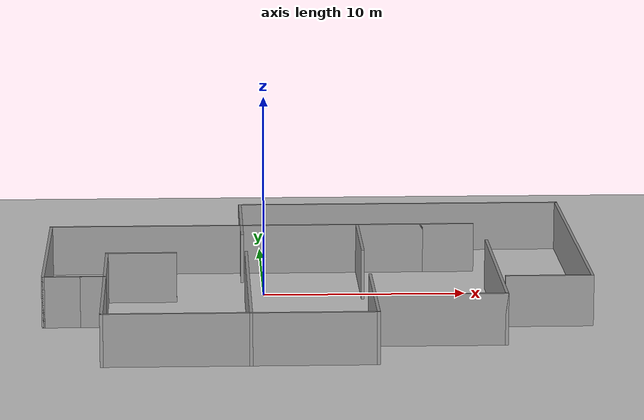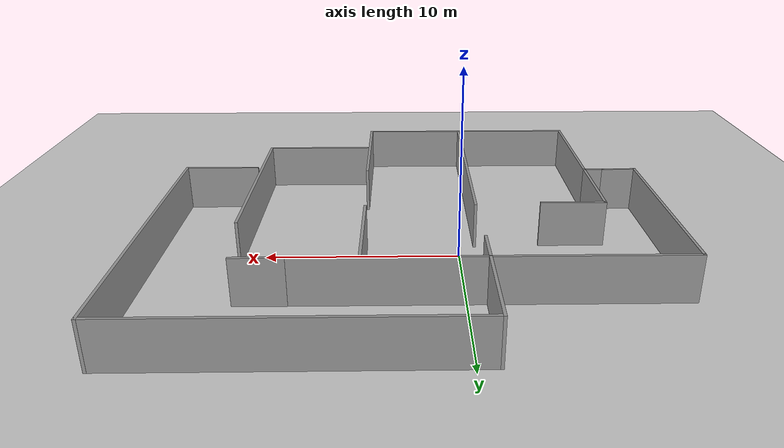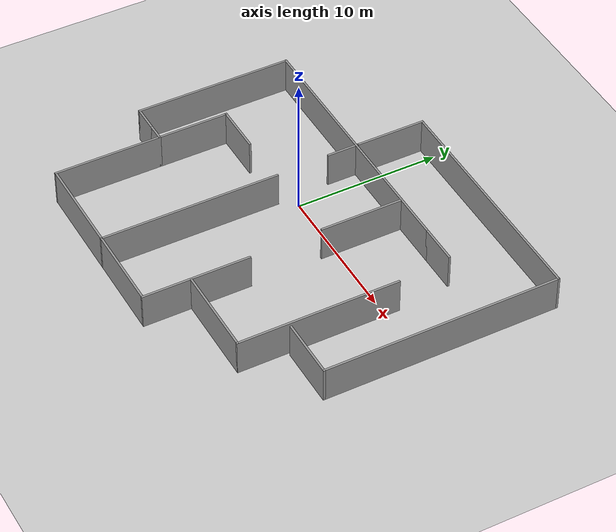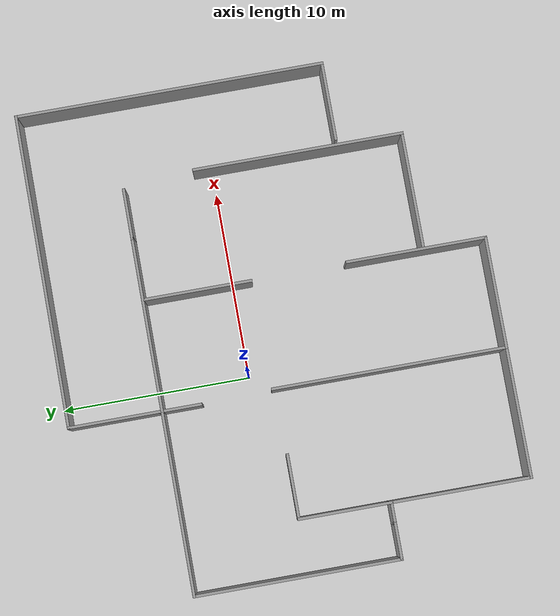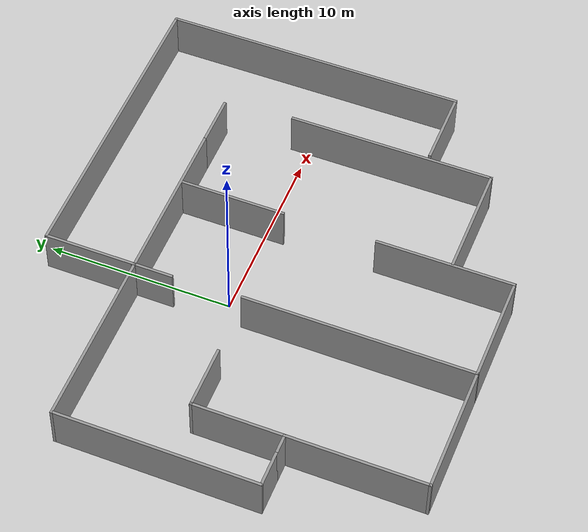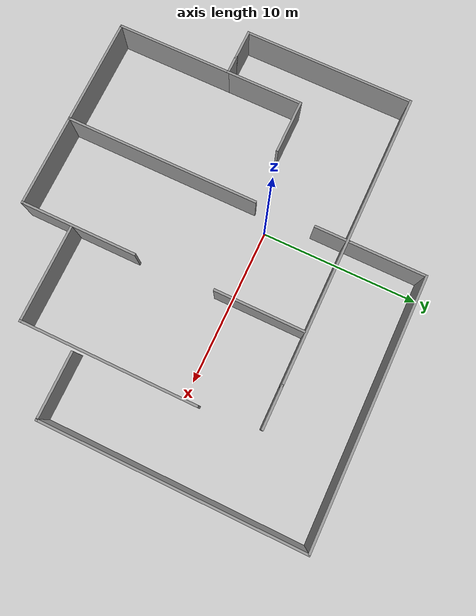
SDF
<sdf version="1.6">
 <world name="default">
  <light name="sun" type="directional">
   <pose>0 0 10 0 -0 0</pose>
   <diffuse>0.8 0.8 0.8 1</diffuse>
   <specular>0.2 0.2 0.2 1</specular>
   <attenuation>
    <range>1000</range>
    <constant>0.9</constant>
    <linear>0.01</linear>
    <quadratic>0.001</quadratic>
   </attenuation>
   <direction>-0.5 0.1 -0.9</direction>
  </light>
  <model name="ground_plane">
   <static>1</static>
   <link name="link">
    <collision name="collision">
     <geometry><plane><normal>0 0 1</normal><size>100 100</size></plane></geometry>
     <surface>
      <contact><collide_bitmask>65535</collide_bitmask></contact>
      <friction><ode><mu>100</mu><mu2>50</mu2></ode></friction>
     </surface>
    </collision>
    <visual name="visual">
     <cast_shadows>0</cast_shadows>
     <geometry><plane><normal>0 0 1</normal><size>100 100</size></plane></geometry>
     <material>
      <script><uri>file://media/materials/scripts/gazebo.material</uri><name>Gazebo/Grey</name></script>
     </material>
    </visual>
   </link>
  </model>
  <gravity>0 0 -9.8</gravity>
  <magnetic_field>6e-06 2.3e-05 -4.2e-05</magnetic_field>
  <atmosphere type="adiabatic"/>
  <physics name="default_physics" default="0" type="ode">
   <max_step_size>0.001</max_step_size>
   <real_time_factor>1</real_time_factor>
   <real_time_update_rate>1000</real_time_update_rate>
  </physics>
  <scene><ambient>0.4 0.4 0.4 1</ambient><background>0.7 0.7 0.7 1</background><shadows>1</shadows></scene>
  <audio><device>default</device></audio>
  <spherical_coordinates>
   <surface_model>EARTH_WGS84</surface_model>
   <latitude_deg>0</latitude_deg>
   <longitude_deg>0</longitude_deg>
   <elevation>0</elevation>
   <heading_deg>0</heading_deg>
  </spherical_coordinates>
  <model name="dalaohouse">
   <pose>2.43948 -1.90045 0 0 -0 0</pose>
   <link name="Wall_10">
    <collision name="Wall_10_Collision">
     <geometry><box><size>3.5 0.15 2.5</size></box></geometry>
     <pose>0 0 1.25 0 -0 0</pose>
    </collision>
    <visual name="Wall_10_Visual">
     <pose>0 0 1.25 0 -0 0</pose>
     <geometry><box><size>3.5 0.15 2.5</size></box></geometry>
     <material>
      <script><uri>file://media/materials/scripts/gazebo.material</uri><name>Gazebo/Grey</name></script>
      <ambient>1 1 1 1</ambient>
     </material>
     <meta><layer>0</layer></meta>
    </visual>
    <pose>-8.51135 0.640175 0 0 -0 0</pose>
   </link>
   <link name="Wall_12">
    <collision name="Wall_12_Collision">
     <geometry><box><size>7.5 0.15 2.5</size></box></geometry>
     <pose>0 0 1.25 0 -0 0</pose>
    </collision>
    <visual name="Wall_12_Visual">
     <pose>0 0 1.25 0 -0 0</pose>
     <geometry><box><size>7.5 0.15 2.5</size></box></geometry>
     <material>
      <script><uri>file://media/materials/scripts/gazebo.material</uri><name>Gazebo/Grey</name></script>
      <ambient>1 1 1 1</ambient>
     </material>
     <meta><layer>0</layer></meta>
    </visual>
    <pose>-10.1863 -7.88483 0 0 -0 -1.5708</pose>
   </link>
   <link name="Wall_13">
    <collision name="Wall_13_Collision">
     <geometry><box><size>7 0.15 2.5</size></box></geometry>
     <pose>0 0 1.25 0 -0 0</pose>
    </collision>
    <visual name="Wall_13_Visual">
     <pose>0 0 1.25 0 -0 0</pose>
     <geometry><box><size>7 0.15 2.5</size></box></geometry>
     <material>
      <script><uri>file://media/materials/scripts/gazebo.material</uri><name>Gazebo/Grey</name></script>
      <ambient>1 1 1 1</ambient>
     </material>
     <meta><layer>0</layer></meta>
    </visual>
    <pose>-6.76135 -11.5598 0 0 -0 0</pose>
   </link>
   <link name="Wall_14">
    <collision name="Wall_14_Collision">
     <geometry><box><size>12.5 0.15 2.5</size></box></geometry>
     <pose>0 0 1.25 0 -0 0</pose>
    </collision>
    <visual name="Wall_14_Visual">
     <pose>0 0 1.25 0 -0 0</pose>
     <geometry><box><size>12.5 0.15 2.5</size></box></geometry>
     <material>
      <script><uri>file://media/materials/scripts/gazebo.material</uri><name>Gazebo/Grey</name></script>
      <ambient>1 1 1 1</ambient>
     </material>
     <meta><layer>0</layer></meta>
    </visual>
    <pose>-3.33635 -5.38483 0 0 -0 1.5708</pose>
   </link>
   <link name="Wall_16">
    <collision name="Wall_16_Collision">
     <geometry><box><size>2.25 0.15 2.5</size></box></geometry>
     <pose>0 0 1.25 0 -0 0</pose>
    </collision>
    <visual name="Wall_16_Visual">
     <pose>0 0 1.25 0 -0 0</pose>
     <geometry><box><size>2.25 0.15 2.5</size></box></geometry>
     <material>
      <script><uri>file://media/materials/scripts/gazebo.material</uri><name>Gazebo/Grey</name></script>
      <ambient>1 1 1 1</ambient>
     </material>
     <meta><layer>0</layer></meta>
    </visual>
    <pose>-3.46365 5.65982 0 0 -0 -1.5708</pose>
   </link>
   <link name="Wall_18">
    <collision name="Wall_18_Collision">
     <geometry><box><size>6 0.15 2.5</size></box></geometry>
     <pose>0 0 1.25 0 -0 0</pose>
    </collision>
    <visual name="Wall_18_Visual">
     <pose>0 0 1.25 0 -0 0</pose>
     <geometry><box><size>6 0.15 2.5</size></box></geometry>
     <material>
      <script><uri>file://media/materials/scripts/gazebo.material</uri><name>Gazebo/Grey</name></script>
      <ambient>1 1 1 1</ambient>
     </material>
     <meta><layer>0</layer></meta>
    </visual>
    <pose>-0.411346 -11.5598 0 0 -0 0</pose>
   </link>
   <link name="Wall_19">
    <collision name="Wall_19_Collision">
     <geometry><box><size>7.5 0.15 2.5</size></box></geometry>
     <pose>0 0 1.25 0 -0 0</pose>
    </collision>
    <visual name="Wall_19_Visual">
     <pose>0 0 1.25 0 -0 0</pose>
     <geometry><box><size>7.5 0.15 2.5</size></box></geometry>
     <material>
      <script><uri>file://media/materials/scripts/gazebo.material</uri><name>Gazebo/Grey</name></script>
      <ambient>1 1 1 1</ambient>
     </material>
     <meta><layer>0</layer></meta>
    </visual>
    <pose>2.51365 -7.88483 0 0 -0 1.5708</pose>
   </link>
   <link name="Wall_21">
    <collision name="Wall_21_Collision">
     <geometry><box><size>5.75 0.15 2.5</size></box></geometry>
     <pose>0 0 1.25 0 -0 0</pose>
    </collision>
    <visual name="Wall_21_Visual">
     <pose>0 0 1.25 0 -0 0</pose>
     <geometry><box><size>5.75 0.15 2.5</size></box></geometry>
     <material>
      <script><uri>file://media/materials/scripts/gazebo.material</uri><name>Gazebo/Grey</name></script>
      <ambient>1 1 1 1</ambient>
     </material>
     <meta><layer>0</layer></meta>
    </visual>
    <pose>2.43165 3.72267 0 0 -0 -1.5708</pose>
   </link>
   <link name="Wall_23">
    <collision name="Wall_23_Collision">
     <geometry><box><size>6.25 0.15 2.5</size></box></geometry>
     <pose>0 0 1.25 0 -0 0</pose>
    </collision>
    <visual name="Wall_23_Visual">
     <pose>0 0 1.25 0 -0 0</pose>
     <geometry><box><size>6.25 0.15 2.5</size></box></geometry>
     <material>
      <script><uri>file://media/materials/scripts/gazebo.material</uri><name>Gazebo/Grey</name></script>
      <ambient>1 1 1 1</ambient>
     </material>
     <meta><layer>0</layer></meta>
    </visual>
    <pose>5.6688 -8.26237 0 0 -0 0</pose>
   </link>
   <link name="Wall_24">
    <collision name="Wall_24_Collision">
     <geometry><box><size>11.25 0.15 2.5</size></box></geometry>
     <pose>0 0 1.25 0 -0 0</pose>
    </collision>
    <visual name="Wall_24_Visual">
     <pose>0 0 1.25 0 -0 0</pose>
     <geometry><box><size>11.25 0.15 2.5</size></box></geometry>
     <material>
      <script><uri>file://media/materials/scripts/gazebo.material</uri><name>Gazebo/Grey</name></script>
      <ambient>1 1 1 1</ambient>
     </material>
     <meta><layer>0</layer></meta>
    </visual>
    <pose>8.7188 -2.71237 0 0 -0 1.5708</pose>
   </link>
   <link name="Wall_26">
    <collision name="Wall_26_Collision">
     <geometry><box><size>5 0.15 2.5</size></box></geometry>
     <pose>0 0 1.25 0 -0 0</pose>
    </collision>
    <visual name="Wall_26_Visual">
     <pose>0 0 1.25 0 -0 0</pose>
     <geometry><box><size>5 0.15 2.5</size></box></geometry>
     <material>
      <script><uri>file://media/materials/scripts/gazebo.material</uri><name>Gazebo/Grey</name></script>
      <ambient>1 1 1 1</ambient>
     </material>
     <meta><layer>0</layer></meta>
    </visual>
    <pose>-3.46365 9.13482 0 0 -0 1.5708</pose>
   </link>
   <link name="Wall_27">
    <collision name="Wall_27_Collision">
     <geometry><box><size>16.75 0.15 2.5</size></box></geometry>
     <pose>0 0 1.25 0 -0 0</pose>
    </collision>
    <visual name="Wall_27_Visual">
     <pose>0 0 1.25 0 -0 0</pose>
     <geometry><box><size>16.75 0.15 2.5</size></box></geometry>
     <material>
      <script><uri>file://media/materials/scripts/gazebo.material</uri><name>Gazebo/Grey</name></script>
      <ambient>1 1 1 1</ambient>
     </material>
     <meta><layer>0</layer></meta>
    </visual>
    <pose>4.83635 11.5598 0 0 -0 0</pose>
   </link>
   <link name="Wall_28">
    <collision name="Wall_28_Collision">
     <geometry><box><size>16.5 0.15 2.5</size></box></geometry>
     <pose>0 0 1.25 0 -0 0</pose>
    </collision>
    <visual name="Wall_28_Visual">
     <pose>0 0 1.25 0 -0 0</pose>
     <geometry><box><size>16.5 0.15 2.5</size></box></geometry>
     <material>
      <script><uri>file://media/materials/scripts/gazebo.material</uri><name>Gazebo/Grey</name></script>
      <ambient>1 1 1 1</ambient>
     </material>
     <meta><layer>0</layer></meta>
    </visual>
    <pose>13.1363 3.38482 0 0 -0 -1.5708</pose>
   </link>
   <link name="Wall_29">
    <collision name="Wall_29_Collision">
     <geometry><box><size>4.25 0.15 2.5</size></box></geometry>
     <pose>0 0 1.25 0 -0 0</pose>
    </collision>
    <visual name="Wall_29_Visual">
     <pose>0 0 1.25 0 -0 0</pose>
     <geometry><box><size>4.25 0.15 2.5</size></box></geometry>
     <material>
      <script><uri>file://media/materials/scripts/gazebo.material</uri><name>Gazebo/Grey</name></script>
      <ambient>1 1 1 1</ambient>
     </material>
     <meta><layer>0</layer></meta>
    </visual>
    <pose>11.0863 -4.79018 0 0 -0 3.14159</pose>
   </link>
   <link name="Wall_3">
    <collision name="Wall_3_Collision">
     <geometry><box><size>19 0.15 2.5</size></box></geometry>
     <pose>0 0 1.25 0 -0 0</pose>
    </collision>
    <visual name="Wall_3_Visual">
     <pose>0 0 1.25 0 -0 0</pose>
     <geometry><box><size>19 0.15 2.5</size></box></geometry>
     <material>
      <script><uri>file://media/materials/scripts/gazebo.material</uri><name>Gazebo/Grey</name></script>
      <ambient>1 1 1 1</ambient>
     </material>
     <meta><layer>0</layer></meta>
    </visual>
    <pose>-3.71135 6.64018 0 0 -0 0</pose>
   </link>
   <link name="Wall_31">
    <collision name="Wall_31_Collision">
     <geometry><box><size>2.75 0.15 2.5</size></box></geometry>
     <pose>0 0 1.25 0 -0 0</pose>
    </collision>
    <visual name="Wall_31_Visual">
     <pose>0 0 1.25 0 -0 0</pose>
     <geometry><box><size>2.75 0.15 2.5</size></box></geometry>
     <material>
      <script><uri>file://media/materials/scripts/gazebo.material</uri><name>Gazebo/Grey</name></script>
      <ambient>1 1 1 1</ambient>
     </material>
     <meta><layer>0</layer></meta>
    </visual>
    <pose>7.01365 6.64018 0 0 -0 0</pose>
   </link>
   <link name="Wall_5">
    <collision name="Wall_5_Collision">
     <geometry><box><size>11 0.15 2.5</size></box></geometry>
     <pose>0 0 1.25 0 -0 0</pose>
    </collision>
    <visual name="Wall_5_Visual">
     <pose>0 0 1.25 0 -0 0</pose>
     <geometry><box><size>11 0.15 2.5</size></box></geometry>
     <material>
      <script><uri>file://media/materials/scripts/gazebo.material</uri><name>Gazebo/Grey</name></script>
      <ambient>1 1 1 1</ambient>
     </material>
     <meta><layer>0</layer></meta>
    </visual>
    <pose>-13.1363 1.21517 0 0 -0 -1.5708</pose>
   </link>
   <link name="Wall_6">
    <collision name="Wall_6_Collision">
     <geometry><box><size>2 0.15 2.5</size></box></geometry>
     <pose>0 0 1.25 0 -0 0</pose>
    </collision>
    <visual name="Wall_6_Visual">
     <pose>0 0 1.25 0 -0 0</pose>
     <geometry><box><size>2 0.15 2.5</size></box></geometry>
     <material>
      <script><uri>file://media/materials/scripts/gazebo.material</uri><name>Gazebo/Grey</name></script>
      <ambient>1 1 1 1</ambient>
     </material>
     <meta><layer>0</layer></meta>
    </visual>
    <pose>-12.2113 -4.20983 0 0 -0 0</pose>
   </link>
   <link name="Wall_8">
    <collision name="Wall_8_Collision">
     <geometry><box><size>1.25 0.15 2.5</size></box></geometry>
     <pose>0 0 1.25 0 -0 0</pose>
    </collision>
    <visual name="Wall_8_Visual">
     <pose>0 0 1.25 0 -0 0</pose>
     <geometry><box><size>1.25 0.15 2.5</size></box></geometry>
     <material>
      <script><uri>file://media/materials/scripts/gazebo.material</uri><name>Gazebo/Grey</name></script>
      <ambient>1 1 1 1</ambient>
     </material>
     <meta><layer>0</layer></meta>
    </visual>
    <pose>-10.7363 -4.20983 0 0 -0 0</pose>
   </link>
   <link name="Wall_9">
    <collision name="Wall_9_Collision">
     <geometry><box><size>5 0.15 2.5</size></box></geometry>
     <pose>0 0 1.25 0 -0 0</pose>
    </collision>
    <visual name="Wall_9_Visual">
     <pose>0 0 1.25 0 -0 0</pose>
     <geometry><box><size>5 0.15 2.5</size></box></geometry>
     <material>
      <script><uri>file://media/materials/scripts/gazebo.material</uri><name>Gazebo/Grey</name></script>
      <ambient>1 1 1 1</ambient>
     </material>
     <meta><layer>0</layer></meta>
    </visual>
    <pose>-10.1863 -1.78483 0 0 -0 1.5708</pose>
   </link>
   <static>1</static>
  </model>
 </world>
</sdf>
